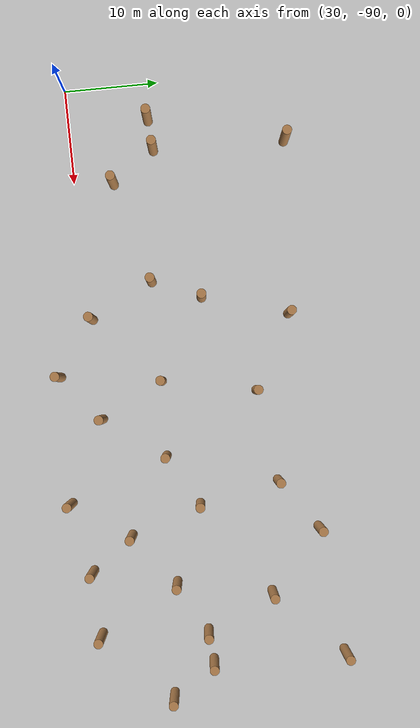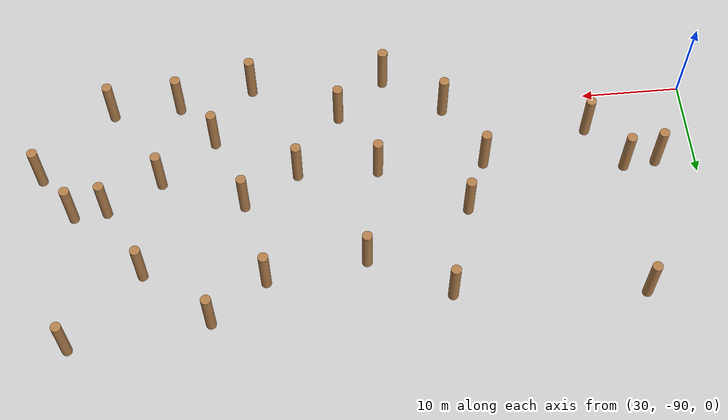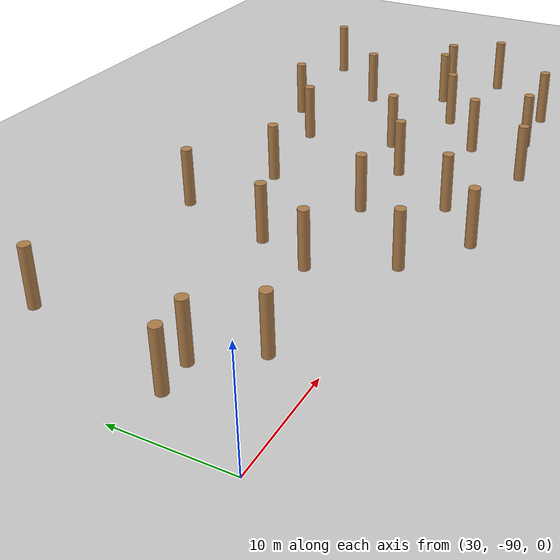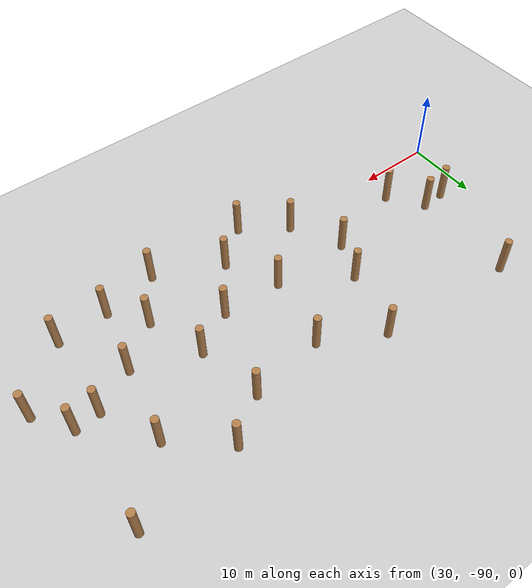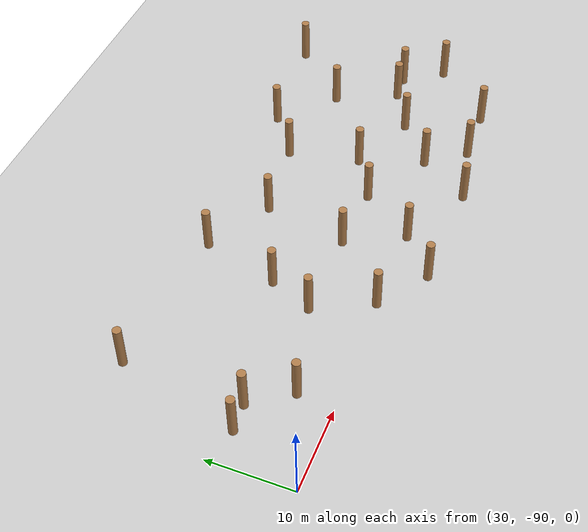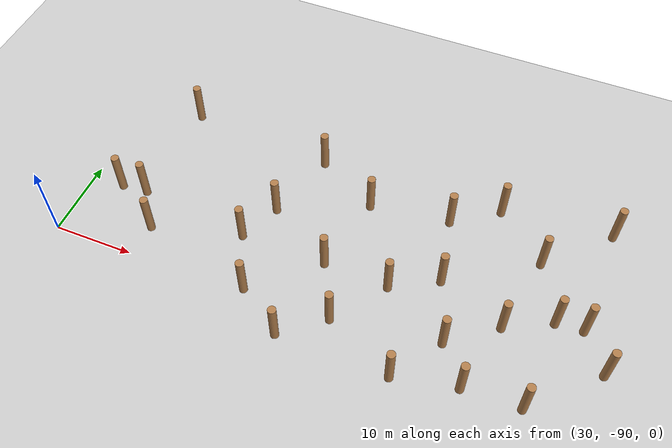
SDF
<sdf version="1.6">
 <world name="default">
  <model name="ground_plane">
   <static>1</static>
   <link name="link">
    <collision name="collision">
     <geometry><plane><normal>0 0 1</normal><size>100 100</size></plane></geometry>
     <surface><friction><ode><mu>100</mu><mu2>50</mu2></ode></friction></surface>
    </collision>
    <visual name="visual">
     <cast_shadows>0</cast_shadows>
     <geometry><plane><normal>0 0 1</normal><size>100 100</size></plane></geometry>
     <material>
      <script><uri>file://media/materials/scripts/gazebo.material</uri><name>Gazebo/Grey</name></script>
     </material>
    </visual>
   </link>
  </model>
  <model name="WoodPillars_5">
   <link name="link">
    <inertial>
     <mass>1</mass>
     <inertia><ixx>0.145833</ixx><ixy>0</ixy><ixz>0</ixz><iyy>0.145833</iyy><iyz>0</iyz><izz>0.125</izz></inertia>
    </inertial>
    <visual name="visual">
     <geometry><cylinder><radius>0.5</radius><length>5.50507</length></cylinder></geometry>
     <material>
      <script><name>Gazebo/Wood</name><uri>file://media/materials/scripts/gazebo.material</uri></script>
     </material>
    </visual>
    <collision name="collision">
     <geometry><cylinder><radius>0.5</radius><length>5.50507</length></cylinder></geometry>
     <surface>
      <friction>
       <ode><mu>1</mu><mu2>1</mu2><fdir1>0 0 0</fdir1><slip1>0</slip1><slip2>0</slip2></ode>
       <torsional>
        <coefficient>1</coefficient>
        <patch_radius>0</patch_radius>
        <surface_radius>0</surface_radius>
        <use_patch_radius>1</use_patch_radius>
        <ode><slip>0</slip></ode>
       </torsional>
      </friction>
      <bounce><restitution_coefficient>0</restitution_coefficient><threshold>1e+06</threshold></bounce>
      <contact>
       <collide_without_contact>0</collide_without_contact>
       <collide_without_contact_bitmask>1</collide_without_contact_bitmask>
       <collide_bitmask>1</collide_bitmask>
       <ode>
        <soft_cfm>0</soft_cfm>
        <soft_erp>0.2</soft_erp>
        <kp>1e+13</kp>
        <kd>1</kd>
        <max_vel>0.01</max_vel>
        <min_depth>0</min_depth>
       </ode>
       <bullet>
        <split_impulse>1</split_impulse>
        <split_impulse_penetration_threshold>-0.01</split_impulse_penetration_threshold>
        <soft_cfm>0</soft_cfm>
        <soft_erp>0.2</soft_erp>
        <kp>1e+13</kp>
        <kd>1</kd>
       </bullet>
      </contact>
     </surface>
    </collision>
   </link>
   <link name="link_clone">
    <inertial>
     <mass>1</mass>
     <inertia><ixx>0.145833</ixx><ixy>0</ixy><ixz>0</ixz><iyy>0.145833</iyy><iyz>0</iyz><izz>0.125</izz></inertia>
    </inertial>
    <pose>17.6954 -2.91348 -2e-06 0 -0 -0.001289</pose>
    <visual name="visual">
     <geometry><cylinder><radius>0.5</radius><length>5.50507</length></cylinder></geometry>
     <material>
      <script><name>Gazebo/Wood</name><uri>file://media/materials/scripts/gazebo.material</uri></script>
      <shader type="pixel"/>
     </material>
    </visual>
    <collision name="collision">
     <geometry><cylinder><radius>0.5</radius><length>5.50507</length></cylinder></geometry>
     <surface>
      <friction>
       <ode><mu>1</mu><mu2>1</mu2><fdir1>0 0 0</fdir1><slip1>0</slip1><slip2>0</slip2></ode>
       <torsional>
        <coefficient>1</coefficient>
        <patch_radius>0</patch_radius>
        <surface_radius>0</surface_radius>
        <use_patch_radius>1</use_patch_radius>
        <ode><slip>0</slip></ode>
       </torsional>
      </friction>
      <bounce><restitution_coefficient>0</restitution_coefficient><threshold>1e+06</threshold></bounce>
      <contact>
       <collide_without_contact>0</collide_without_contact>
       <collide_without_contact_bitmask>1</collide_without_contact_bitmask>
       <collide_bitmask>1</collide_bitmask>
       <ode>
        <soft_cfm>0</soft_cfm>
        <soft_erp>0.2</soft_erp>
        <kp>1e+13</kp>
        <kd>1</kd>
        <max_vel>0.01</max_vel>
        <min_depth>0</min_depth>
       </ode>
       <bullet>
        <split_impulse>1</split_impulse>
        <split_impulse_penetration_threshold>-0.01</split_impulse_penetration_threshold>
        <soft_cfm>0</soft_cfm>
        <soft_erp>0.2</soft_erp>
        <kp>1e+13</kp>
        <kd>1</kd>
       </bullet>
      </contact>
     </surface>
    </collision>
   </link>
   <link name="link_clone_12">
    <inertial>
     <mass>1</mass>
     <inertia><ixx>0.145833</ixx><ixy>0</ixy><ixz>0</ixz><iyy>0.145833</iyy><iyz>0</iyz><izz>0.125</izz></inertia>
    </inertial>
    <pose>36.6063 2.3916 -3e-06 0 -0 -0.001289</pose>
    <visual name="visual">
     <geometry><cylinder><radius>0.5</radius><length>5.50507</length></cylinder></geometry>
     <material>
      <script><name>Gazebo/Wood</name><uri>file://media/materials/scripts/gazebo.material</uri></script>
      <shader type="pixel"/>
     </material>
    </visual>
    <collision name="collision">
     <geometry><cylinder><radius>0.5</radius><length>5.50507</length></cylinder></geometry>
     <surface>
      <friction>
       <ode><mu>1</mu><mu2>1</mu2><fdir1>0 0 0</fdir1><slip1>0</slip1><slip2>0</slip2></ode>
       <torsional>
        <coefficient>1</coefficient>
        <patch_radius>0</patch_radius>
        <surface_radius>0</surface_radius>
        <use_patch_radius>1</use_patch_radius>
        <ode><slip>0</slip></ode>
       </torsional>
      </friction>
      <bounce><restitution_coefficient>0</restitution_coefficient><threshold>1e+06</threshold></bounce>
      <contact>
       <collide_without_contact>0</collide_without_contact>
       <collide_without_contact_bitmask>1</collide_without_contact_bitmask>
       <collide_bitmask>1</collide_bitmask>
       <ode>
        <soft_cfm>0</soft_cfm>
        <soft_erp>0.2</soft_erp>
        <kp>1e+13</kp>
        <kd>1</kd>
        <max_vel>0.01</max_vel>
        <min_depth>0</min_depth>
       </ode>
       <bullet>
        <split_impulse>1</split_impulse>
        <split_impulse_penetration_threshold>-0.01</split_impulse_penetration_threshold>
        <soft_cfm>0</soft_cfm>
        <soft_erp>0.2</soft_erp>
        <kp>1e+13</kp>
        <kd>1</kd>
       </bullet>
      </contact>
     </surface>
    </collision>
   </link>
   <link name="link_clone_13">
    <inertial>
     <mass>1</mass>
     <inertia><ixx>0.145833</ixx><ixy>0</ixy><ixz>0</ixz><iyy>0.145833</iyy><iyz>0</iyz><izz>0.125</izz></inertia>
    </inertial>
    <pose>32.2715 -23.3528 -3e-06 0 -0 -0.001289</pose>
    <visual name="visual">
     <geometry><cylinder><radius>0.5</radius><length>5.50507</length></cylinder></geometry>
     <material>
      <script><name>Gazebo/Wood</name><uri>file://media/materials/scripts/gazebo.material</uri></script>
      <shader type="pixel"/>
     </material>
    </visual>
    <collision name="collision">
     <geometry><cylinder><radius>0.5</radius><length>5.50507</length></cylinder></geometry>
     <surface>
      <friction>
       <ode><mu>1</mu><mu2>1</mu2><fdir1>0 0 0</fdir1><slip1>0</slip1><slip2>0</slip2></ode>
       <torsional>
        <coefficient>1</coefficient>
        <patch_radius>0</patch_radius>
        <surface_radius>0</surface_radius>
        <use_patch_radius>1</use_patch_radius>
        <ode><slip>0</slip></ode>
       </torsional>
      </friction>
      <bounce><restitution_coefficient>0</restitution_coefficient><threshold>1e+06</threshold></bounce>
      <contact>
       <collide_without_contact>0</collide_without_contact>
       <collide_without_contact_bitmask>1</collide_without_contact_bitmask>
       <collide_bitmask>1</collide_bitmask>
       <ode>
        <soft_cfm>0</soft_cfm>
        <soft_erp>0.2</soft_erp>
        <kp>1e+13</kp>
        <kd>1</kd>
        <max_vel>0.01</max_vel>
        <min_depth>0</min_depth>
       </ode>
       <bullet>
        <split_impulse>1</split_impulse>
        <split_impulse_penetration_threshold>-0.01</split_impulse_penetration_threshold>
        <soft_cfm>0</soft_cfm>
        <soft_erp>0.2</soft_erp>
        <kp>1e+13</kp>
        <kd>1</kd>
       </bullet>
      </contact>
     </surface>
    </collision>
   </link>
   <link name="link_clone_14">
    <inertial>
     <mass>1</mass>
     <inertia><ixx>0.145833</ixx><ixy>0</ixy><ixz>0</ixz><iyy>0.145833</iyy><iyz>0</iyz><izz>0.125</izz></inertia>
    </inertial>
    <pose>9.31461 -20.9997 -1e-06 0 -0 -0.001289</pose>
    <visual name="visual">
     <geometry><cylinder><radius>0.5</radius><length>5.50507</length></cylinder></geometry>
     <material>
      <script><name>Gazebo/Wood</name><uri>file://media/materials/scripts/gazebo.material</uri></script>
      <shader type="pixel"/>
     </material>
    </visual>
    <collision name="collision">
     <geometry><cylinder><radius>0.5</radius><length>5.50507</length></cylinder></geometry>
     <surface>
      <friction>
       <ode><mu>1</mu><mu2>1</mu2><fdir1>0 0 0</fdir1><slip1>0</slip1><slip2>0</slip2></ode>
       <torsional>
        <coefficient>1</coefficient>
        <patch_radius>0</patch_radius>
        <surface_radius>0</surface_radius>
        <use_patch_radius>1</use_patch_radius>
        <ode><slip>0</slip></ode>
       </torsional>
      </friction>
      <bounce><restitution_coefficient>0</restitution_coefficient><threshold>1e+06</threshold></bounce>
      <contact>
       <collide_without_contact>0</collide_without_contact>
       <collide_without_contact_bitmask>1</collide_without_contact_bitmask>
       <collide_bitmask>1</collide_bitmask>
       <ode>
        <soft_cfm>0</soft_cfm>
        <soft_erp>0.2</soft_erp>
        <kp>1e+13</kp>
        <kd>1</kd>
        <max_vel>0.01</max_vel>
        <min_depth>0</min_depth>
       </ode>
       <bullet>
        <split_impulse>1</split_impulse>
        <split_impulse_penetration_threshold>-0.01</split_impulse_penetration_threshold>
        <soft_cfm>0</soft_cfm>
        <soft_erp>0.2</soft_erp>
        <kp>1e+13</kp>
        <kd>1</kd>
       </bullet>
      </contact>
     </surface>
    </collision>
   </link>
   <link name="link_clone_15">
    <inertial>
     <mass>1</mass>
     <inertia><ixx>0.145833</ixx><ixy>0</ixy><ixz>0</ixz><iyy>0.145833</iyy><iyz>0</iyz><izz>0.125</izz></inertia>
    </inertial>
    <pose>17.9894 -25.1945 -2e-06 0 -0 -0.001289</pose>
    <visual name="visual">
     <geometry><cylinder><radius>0.5</radius><length>5.50507</length></cylinder></geometry>
     <material>
      <script><name>Gazebo/Wood</name><uri>file://media/materials/scripts/gazebo.material</uri></script>
      <shader type="pixel"/>
     </material>
    </visual>
    <collision name="collision">
     <geometry><cylinder><radius>0.5</radius><length>5.50507</length></cylinder></geometry>
     <surface>
      <friction>
       <ode><mu>1</mu><mu2>1</mu2><fdir1>0 0 0</fdir1><slip1>0</slip1><slip2>0</slip2></ode>
       <torsional>
        <coefficient>1</coefficient>
        <patch_radius>0</patch_radius>
        <surface_radius>0</surface_radius>
        <use_patch_radius>1</use_patch_radius>
        <ode><slip>0</slip></ode>
       </torsional>
      </friction>
      <bounce><restitution_coefficient>0</restitution_coefficient><threshold>1e+06</threshold></bounce>
      <contact>
       <collide_without_contact>0</collide_without_contact>
       <collide_without_contact_bitmask>1</collide_without_contact_bitmask>
       <collide_bitmask>1</collide_bitmask>
       <ode>
        <soft_cfm>0</soft_cfm>
        <soft_erp>0.2</soft_erp>
        <kp>1e+13</kp>
        <kd>1</kd>
        <max_vel>0.01</max_vel>
        <min_depth>0</min_depth>
       </ode>
       <bullet>
        <split_impulse>1</split_impulse>
        <split_impulse_penetration_threshold>-0.01</split_impulse_penetration_threshold>
        <soft_cfm>0</soft_cfm>
        <soft_erp>0.2</soft_erp>
        <kp>1e+13</kp>
        <kd>1</kd>
       </bullet>
      </contact>
     </surface>
    </collision>
   </link>
   <link name="link_clone_16">
    <inertial>
     <mass>1</mass>
     <inertia><ixx>0.145833</ixx><ixy>0</ixy><ixz>0</ixz><iyy>0.145833</iyy><iyz>0</iyz><izz>0.125</izz></inertia>
    </inertial>
    <pose>32.9662 -11.9429 -3e-06 0 -0 -0.001289</pose>
    <visual name="visual">
     <geometry><cylinder><radius>0.5</radius><length>5.50507</length></cylinder></geometry>
     <material>
      <script><name>Gazebo/Wood</name><uri>file://media/materials/scripts/gazebo.material</uri></script>
      <shader type="pixel"/>
     </material>
    </visual>
    <collision name="collision">
     <geometry><cylinder><radius>0.5</radius><length>5.50507</length></cylinder></geometry>
     <surface>
      <friction>
       <ode><mu>1</mu><mu2>1</mu2><fdir1>0 0 0</fdir1><slip1>0</slip1><slip2>0</slip2></ode>
       <torsional>
        <coefficient>1</coefficient>
        <patch_radius>0</patch_radius>
        <surface_radius>0</surface_radius>
        <use_patch_radius>1</use_patch_radius>
        <ode><slip>0</slip></ode>
       </torsional>
      </friction>
      <bounce><restitution_coefficient>0</restitution_coefficient><threshold>1e+06</threshold></bounce>
      <contact>
       <collide_without_contact>0</collide_without_contact>
       <collide_without_contact_bitmask>1</collide_without_contact_bitmask>
       <collide_bitmask>1</collide_bitmask>
       <ode>
        <soft_cfm>0</soft_cfm>
        <soft_erp>0.2</soft_erp>
        <kp>1e+13</kp>
        <kd>1</kd>
        <max_vel>0.01</max_vel>
        <min_depth>0</min_depth>
       </ode>
       <bullet>
        <split_impulse>1</split_impulse>
        <split_impulse_penetration_threshold>-0.01</split_impulse_penetration_threshold>
        <soft_cfm>0</soft_cfm>
        <soft_erp>0.2</soft_erp>
        <kp>1e+13</kp>
        <kd>1</kd>
       </bullet>
      </contact>
     </surface>
    </collision>
   </link>
   <link name="link_clone_17">
    <inertial>
     <mass>1</mass>
     <inertia><ixx>0.145833</ixx><ixy>0</ixy><ixz>0</ixz><iyy>0.145833</iyy><iyz>0</iyz><izz>0.125</izz></inertia>
    </inertial>
    <pose>19.3784 -11.4604 -2e-06 0 -0 -0.001289</pose>
    <visual name="visual">
     <geometry><cylinder><radius>0.5</radius><length>5.50507</length></cylinder></geometry>
     <material>
      <script><name>Gazebo/Wood</name><uri>file://media/materials/scripts/gazebo.material</uri></script>
      <shader type="pixel"/>
     </material>
    </visual>
    <collision name="collision">
     <geometry><cylinder><radius>0.5</radius><length>5.50507</length></cylinder></geometry>
     <surface>
      <friction>
       <ode><mu>1</mu><mu2>1</mu2><fdir1>0 0 0</fdir1><slip1>0</slip1><slip2>0</slip2></ode>
       <torsional>
        <coefficient>1</coefficient>
        <patch_radius>0</patch_radius>
        <surface_radius>0</surface_radius>
        <use_patch_radius>1</use_patch_radius>
        <ode><slip>0</slip></ode>
       </torsional>
      </friction>
      <bounce><restitution_coefficient>0</restitution_coefficient><threshold>1e+06</threshold></bounce>
      <contact>
       <collide_without_contact>0</collide_without_contact>
       <collide_without_contact_bitmask>1</collide_without_contact_bitmask>
       <collide_bitmask>1</collide_bitmask>
       <ode>
        <soft_cfm>0</soft_cfm>
        <soft_erp>0.2</soft_erp>
        <kp>1e+13</kp>
        <kd>1</kd>
        <max_vel>0.01</max_vel>
        <min_depth>0</min_depth>
       </ode>
       <bullet>
        <split_impulse>1</split_impulse>
        <split_impulse_penetration_threshold>-0.01</split_impulse_penetration_threshold>
        <soft_cfm>0</soft_cfm>
        <soft_erp>0.2</soft_erp>
        <kp>1e+13</kp>
        <kd>1</kd>
       </bullet>
      </contact>
     </surface>
    </collision>
   </link>
   <link name="link_clone_20">
    <inertial>
     <mass>1</mass>
     <inertia><ixx>0.145833</ixx><ixy>0</ixy><ixz>0</ixz><iyy>0.145833</iyy><iyz>0</iyz><izz>0.125</izz></inertia>
    </inertial>
    <pose>-2.64423 -9.12396 -0 0 -0 -0.001289</pose>
    <visual name="visual">
     <geometry><cylinder><radius>0.5</radius><length>5.50507</length></cylinder></geometry>
     <material>
      <script><name>Gazebo/Wood</name><uri>file://media/materials/scripts/gazebo.material</uri></script>
      <shader type="pixel"/>
     </material>
    </visual>
    <collision name="collision">
     <geometry><cylinder><radius>0.5</radius><length>5.50507</length></cylinder></geometry>
     <surface>
      <friction>
       <ode><mu>1</mu><mu2>1</mu2><fdir1>0 0 0</fdir1><slip1>0</slip1><slip2>0</slip2></ode>
       <torsional>
        <coefficient>1</coefficient>
        <patch_radius>0</patch_radius>
        <surface_radius>0</surface_radius>
        <use_patch_radius>1</use_patch_radius>
        <ode><slip>0</slip></ode>
       </torsional>
      </friction>
      <bounce><restitution_coefficient>0</restitution_coefficient><threshold>1e+06</threshold></bounce>
      <contact>
       <collide_without_contact>0</collide_without_contact>
       <collide_without_contact_bitmask>1</collide_without_contact_bitmask>
       <collide_bitmask>1</collide_bitmask>
       <ode>
        <soft_cfm>0</soft_cfm>
        <soft_erp>0.2</soft_erp>
        <kp>1e+13</kp>
        <kd>1</kd>
        <max_vel>0.01</max_vel>
        <min_depth>0</min_depth>
       </ode>
       <bullet>
        <split_impulse>1</split_impulse>
        <split_impulse_penetration_threshold>-0.01</split_impulse_penetration_threshold>
        <soft_cfm>0</soft_cfm>
        <soft_erp>0.2</soft_erp>
        <kp>1e+13</kp>
        <kd>1</kd>
       </bullet>
      </contact>
     </surface>
    </collision>
   </link>
   <link name="link_clone_23">
    <inertial>
     <mass>1</mass>
     <inertia><ixx>0.145833</ixx><ixy>0</ixy><ixz>0</ixz><iyy>0.145833</iyy><iyz>0</iyz><izz>0.125</izz></inertia>
    </inertial>
    <pose>29.5176 -4.71623 -3e-06 0 -0 -0.001289</pose>
    <visual name="visual">
     <geometry><cylinder><radius>0.5</radius><length>5.50507</length></cylinder></geometry>
     <material>
      <script><name>Gazebo/Wood</name><uri>file://media/materials/scripts/gazebo.material</uri></script>
      <shader type="pixel"/>
     </material>
    </visual>
    <collision name="collision">
     <geometry><cylinder><radius>0.5</radius><length>5.50507</length></cylinder></geometry>
     <surface>
      <friction>
       <ode><mu>1</mu><mu2>1</mu2><fdir1>0 0 0</fdir1><slip1>0</slip1><slip2>0</slip2></ode>
       <torsional>
        <coefficient>1</coefficient>
        <patch_radius>0</patch_radius>
        <surface_radius>0</surface_radius>
        <use_patch_radius>1</use_patch_radius>
        <ode><slip>0</slip></ode>
       </torsional>
      </friction>
      <bounce><restitution_coefficient>0</restitution_coefficient><threshold>1e+06</threshold></bounce>
      <contact>
       <collide_without_contact>0</collide_without_contact>
       <collide_without_contact_bitmask>1</collide_without_contact_bitmask>
       <collide_bitmask>1</collide_bitmask>
       <ode>
        <soft_cfm>0</soft_cfm>
        <soft_erp>0.2</soft_erp>
        <kp>1e+13</kp>
        <kd>1</kd>
        <max_vel>0.01</max_vel>
        <min_depth>0</min_depth>
       </ode>
       <bullet>
        <split_impulse>1</split_impulse>
        <split_impulse_penetration_threshold>-0.01</split_impulse_penetration_threshold>
        <soft_cfm>0</soft_cfm>
        <soft_erp>0.2</soft_erp>
        <kp>1e+13</kp>
        <kd>1</kd>
       </bullet>
      </contact>
     </surface>
    </collision>
   </link>
   <link name="link_clone_24">
    <inertial>
     <mass>1</mass>
     <inertia><ixx>0.145833</ixx><ixy>0</ixy><ixz>0</ixz><iyy>0.145833</iyy><iyz>0</iyz><izz>0.125</izz></inertia>
    </inertial>
    <pose>7.84688 -4.26113 -1e-06 0 -0 -0.001289</pose>
    <visual name="visual">
     <geometry><cylinder><radius>0.5</radius><length>5.50507</length></cylinder></geometry>
     <material>
      <script><name>Gazebo/Wood</name><uri>file://media/materials/scripts/gazebo.material</uri></script>
      <shader type="pixel"/>
     </material>
    </visual>
    <collision name="collision">
     <geometry><cylinder><radius>0.5</radius><length>5.50507</length></cylinder></geometry>
     <surface>
      <friction>
       <ode><mu>1</mu><mu2>1</mu2><fdir1>0 0 0</fdir1><slip1>0</slip1><slip2>0</slip2></ode>
       <torsional>
        <coefficient>1</coefficient>
        <patch_radius>0</patch_radius>
        <surface_radius>0</surface_radius>
        <use_patch_radius>1</use_patch_radius>
        <ode><slip>0</slip></ode>
       </torsional>
      </friction>
      <bounce><restitution_coefficient>0</restitution_coefficient><threshold>1e+06</threshold></bounce>
      <contact>
       <collide_without_contact>0</collide_without_contact>
       <collide_without_contact_bitmask>1</collide_without_contact_bitmask>
       <collide_bitmask>1</collide_bitmask>
       <ode>
        <soft_cfm>0</soft_cfm>
        <soft_erp>0.2</soft_erp>
        <kp>1e+13</kp>
        <kd>1</kd>
        <max_vel>0.01</max_vel>
        <min_depth>0</min_depth>
       </ode>
       <bullet>
        <split_impulse>1</split_impulse>
        <split_impulse_penetration_threshold>-0.01</split_impulse_penetration_threshold>
        <soft_cfm>0</soft_cfm>
        <soft_erp>0.2</soft_erp>
        <kp>1e+13</kp>
        <kd>1</kd>
       </bullet>
      </contact>
     </surface>
    </collision>
   </link>
   <link name="link_clone_26">
    <inertial>
     <mass>1</mass>
     <inertia><ixx>0.145833</ixx><ixy>0</ixy><ixz>0</ixz><iyy>0.145833</iyy><iyz>0</iyz><izz>0.125</izz></inertia>
    </inertial>
    <pose>13.9187 -14.5508 -1e-06 0 -0 -0.001289</pose>
    <visual name="visual">
     <geometry><cylinder><radius>0.5</radius><length>5.50507</length></cylinder></geometry>
     <material>
      <script><name>Gazebo/Wood</name><uri>file://media/materials/scripts/gazebo.material</uri></script>
      <shader type="pixel"/>
     </material>
    </visual>
    <collision name="collision">
     <geometry><cylinder><radius>0.5</radius><length>5.50507</length></cylinder></geometry>
     <surface>
      <friction>
       <ode><mu>1</mu><mu2>1</mu2><fdir1>0 0 0</fdir1><slip1>0</slip1><slip2>0</slip2></ode>
       <torsional>
        <coefficient>1</coefficient>
        <patch_radius>0</patch_radius>
        <surface_radius>0</surface_radius>
        <use_patch_radius>1</use_patch_radius>
        <ode><slip>0</slip></ode>
       </torsional>
      </friction>
      <bounce><restitution_coefficient>0</restitution_coefficient><threshold>1e+06</threshold></bounce>
      <contact>
       <collide_without_contact>0</collide_without_contact>
       <collide_without_contact_bitmask>1</collide_without_contact_bitmask>
       <collide_bitmask>1</collide_bitmask>
       <ode>
        <soft_cfm>0</soft_cfm>
        <soft_erp>0.2</soft_erp>
        <kp>1e+13</kp>
        <kd>1</kd>
        <max_vel>0.01</max_vel>
        <min_depth>0</min_depth>
       </ode>
       <bullet>
        <split_impulse>1</split_impulse>
        <split_impulse_penetration_threshold>-0.01</split_impulse_penetration_threshold>
        <soft_cfm>0</soft_cfm>
        <soft_erp>0.2</soft_erp>
        <kp>1e+13</kp>
        <kd>1</kd>
       </bullet>
      </contact>
     </surface>
    </collision>
   </link>
   <link name="link_clone_27">
    <inertial>
     <mass>1</mass>
     <inertia><ixx>0.145833</ixx><ixy>0</ixy><ixz>0</ixz><iyy>0.145833</iyy><iyz>0</iyz><izz>0.125</izz></inertia>
    </inertial>
    <pose>4.38632 -25.0605 -1e-06 0 -0 -0.001289</pose>
    <visual name="visual">
     <geometry><cylinder><radius>0.5</radius><length>5.50507</length></cylinder></geometry>
     <material>
      <script><name>Gazebo/Wood</name><uri>file://media/materials/scripts/gazebo.material</uri></script>
      <shader type="pixel"/>
     </material>
    </visual>
    <collision name="collision">
     <geometry><cylinder><radius>0.5</radius><length>5.50507</length></cylinder></geometry>
     <surface>
      <friction>
       <ode><mu>1</mu><mu2>1</mu2><fdir1>0 0 0</fdir1><slip1>0</slip1><slip2>0</slip2></ode>
       <torsional>
        <coefficient>1</coefficient>
        <patch_radius>0</patch_radius>
        <surface_radius>0</surface_radius>
        <use_patch_radius>1</use_patch_radius>
        <ode><slip>0</slip></ode>
       </torsional>
      </friction>
      <bounce><restitution_coefficient>0</restitution_coefficient><threshold>1e+06</threshold></bounce>
      <contact>
       <collide_without_contact>0</collide_without_contact>
       <collide_without_contact_bitmask>1</collide_without_contact_bitmask>
       <collide_bitmask>1</collide_bitmask>
       <ode>
        <soft_cfm>0</soft_cfm>
        <soft_erp>0.2</soft_erp>
        <kp>1e+13</kp>
        <kd>1</kd>
        <max_vel>0.01</max_vel>
        <min_depth>0</min_depth>
       </ode>
       <bullet>
        <split_impulse>1</split_impulse>
        <split_impulse_penetration_threshold>-0.01</split_impulse_penetration_threshold>
        <soft_cfm>0</soft_cfm>
        <soft_erp>0.2</soft_erp>
        <kp>1e+13</kp>
        <kd>1</kd>
       </bullet>
      </contact>
     </surface>
    </collision>
   </link>
   <link name="link_clone_28">
    <inertial>
     <mass>1</mass>
     <inertia><ixx>0.145833</ixx><ixy>0</ixy><ixz>0</ixz><iyy>0.145833</iyy><iyz>0</iyz><izz>0.125</izz></inertia>
    </inertial>
    <pose>27.5353 -14.766 -3e-06 0 -0 -0.001289</pose>
    <visual name="visual">
     <geometry><cylinder><radius>0.5</radius><length>5.50507</length></cylinder></geometry>
     <material>
      <script><name>Gazebo/Wood</name><uri>file://media/materials/scripts/gazebo.material</uri></script>
      <shader type="pixel"/>
     </material>
    </visual>
    <collision name="collision">
     <geometry><cylinder><radius>0.5</radius><length>5.50507</length></cylinder></geometry>
     <surface>
      <friction>
       <ode><mu>1</mu><mu2>1</mu2><fdir1>0 0 0</fdir1><slip1>0</slip1><slip2>0</slip2></ode>
       <torsional>
        <coefficient>1</coefficient>
        <patch_radius>0</patch_radius>
        <surface_radius>0</surface_radius>
        <use_patch_radius>1</use_patch_radius>
        <ode><slip>0</slip></ode>
       </torsional>
      </friction>
      <bounce><restitution_coefficient>0</restitution_coefficient><threshold>1e+06</threshold></bounce>
      <contact>
       <collide_without_contact>0</collide_without_contact>
       <collide_without_contact_bitmask>1</collide_without_contact_bitmask>
       <collide_bitmask>1</collide_bitmask>
       <ode>
        <soft_cfm>0</soft_cfm>
        <soft_erp>0.2</soft_erp>
        <kp>1e+13</kp>
        <kd>1</kd>
        <max_vel>0.01</max_vel>
        <min_depth>0</min_depth>
       </ode>
       <bullet>
        <split_impulse>1</split_impulse>
        <split_impulse_penetration_threshold>-0.01</split_impulse_penetration_threshold>
        <soft_cfm>0</soft_cfm>
        <soft_erp>0.2</soft_erp>
        <kp>1e+13</kp>
        <kd>1</kd>
       </bullet>
      </contact>
     </surface>
    </collision>
   </link>
   <link name="link_clone_29">
    <inertial>
     <mass>1</mass>
     <inertia><ixx>0.145833</ixx><ixy>0</ixy><ixz>0</ixz><iyy>0.145833</iyy><iyz>0</iyz><izz>0.125</izz></inertia>
    </inertial>
    <pose>39.4401 -16.2696 -4e-06 0 -0 -0.001289</pose>
    <visual name="visual">
     <geometry><cylinder><radius>0.5</radius><length>5.50507</length></cylinder></geometry>
     <material>
      <script><name>Gazebo/Wood</name><uri>file://media/materials/scripts/gazebo.material</uri></script>
      <shader type="pixel"/>
     </material>
    </visual>
    <collision name="collision">
     <geometry><cylinder><radius>0.5</radius><length>5.50507</length></cylinder></geometry>
     <surface>
      <friction>
       <ode><mu>1</mu><mu2>1</mu2><fdir1>0 0 0</fdir1><slip1>0</slip1><slip2>0</slip2></ode>
       <torsional>
        <coefficient>1</coefficient>
        <patch_radius>0</patch_radius>
        <surface_radius>0</surface_radius>
        <use_patch_radius>1</use_patch_radius>
        <ode><slip>0</slip></ode>
       </torsional>
      </friction>
      <bounce><restitution_coefficient>0</restitution_coefficient><threshold>1e+06</threshold></bounce>
      <contact>
       <collide_without_contact>0</collide_without_contact>
       <collide_without_contact_bitmask>1</collide_without_contact_bitmask>
       <collide_bitmask>1</collide_bitmask>
       <ode>
        <soft_cfm>0</soft_cfm>
        <soft_erp>0.2</soft_erp>
        <kp>1e+13</kp>
        <kd>1</kd>
        <max_vel>0.01</max_vel>
        <min_depth>0</min_depth>
       </ode>
       <bullet>
        <split_impulse>1</split_impulse>
        <split_impulse_penetration_threshold>-0.01</split_impulse_penetration_threshold>
        <soft_cfm>0</soft_cfm>
        <soft_erp>0.2</soft_erp>
        <kp>1e+13</kp>
        <kd>1</kd>
       </bullet>
      </contact>
     </surface>
    </collision>
   </link>
   <link name="link_clone_32">
    <inertial>
     <mass>1</mass>
     <inertia><ixx>0.145833</ixx><ixy>0</ixy><ixz>0</ixz><iyy>0.145833</iyy><iyz>0</iyz><izz>0.125</izz></inertia>
    </inertial>
    <pose>-4.82669 -14.2698 -0 0 -0 -0.001289</pose>
    <visual name="visual">
     <geometry><cylinder><radius>0.5</radius><length>5.50507</length></cylinder></geometry>
     <material>
      <script><name>Gazebo/Wood</name><uri>file://media/materials/scripts/gazebo.material</uri></script>
      <shader type="pixel"/>
     </material>
    </visual>
    <collision name="collision">
     <geometry><cylinder><radius>0.5</radius><length>5.50507</length></cylinder></geometry>
     <surface>
      <friction>
       <ode><mu>1</mu><mu2>1</mu2><fdir1>0 0 0</fdir1><slip1>0</slip1><slip2>0</slip2></ode>
       <torsional>
        <coefficient>1</coefficient>
        <patch_radius>0</patch_radius>
        <surface_radius>0</surface_radius>
        <use_patch_radius>1</use_patch_radius>
        <ode><slip>0</slip></ode>
       </torsional>
      </friction>
      <bounce><restitution_coefficient>0</restitution_coefficient><threshold>1e+06</threshold></bounce>
      <contact>
       <collide_without_contact>0</collide_without_contact>
       <collide_without_contact_bitmask>1</collide_without_contact_bitmask>
       <collide_bitmask>1</collide_bitmask>
       <ode>
        <soft_cfm>0</soft_cfm>
        <soft_erp>0.2</soft_erp>
        <kp>1e+13</kp>
        <kd>1</kd>
        <max_vel>0.01</max_vel>
        <min_depth>0</min_depth>
       </ode>
       <bullet>
        <split_impulse>1</split_impulse>
        <split_impulse_penetration_threshold>-0.01</split_impulse_penetration_threshold>
        <soft_cfm>0</soft_cfm>
        <soft_erp>0.2</soft_erp>
        <kp>1e+13</kp>
        <kd>1</kd>
       </bullet>
      </contact>
     </surface>
    </collision>
   </link>
   <link name="link_clone_34">
    <inertial>
     <mass>1</mass>
     <inertia><ixx>0.145833</ixx><ixy>0</ixy><ixz>0</ixz><iyy>0.145833</iyy><iyz>0</iyz><izz>0.125</izz></inertia>
    </inertial>
    <pose>25.4673 -23.5908 -3e-06 0 -0 -0.001289</pose>
    <visual name="visual">
     <geometry><cylinder><radius>0.5</radius><length>5.50507</length></cylinder></geometry>
     <material>
      <script><name>Gazebo/Wood</name><uri>file://media/materials/scripts/gazebo.material</uri></script>
      <shader type="pixel"/>
     </material>
    </visual>
    <collision name="collision">
     <geometry><cylinder><radius>0.5</radius><length>5.50507</length></cylinder></geometry>
     <surface>
      <friction>
       <ode><mu>1</mu><mu2>1</mu2><fdir1>0 0 0</fdir1><slip1>0</slip1><slip2>0</slip2></ode>
       <torsional>
        <coefficient>1</coefficient>
        <patch_radius>0</patch_radius>
        <surface_radius>0</surface_radius>
        <use_patch_radius>1</use_patch_radius>
        <ode><slip>0</slip></ode>
       </torsional>
      </friction>
      <bounce><restitution_coefficient>0</restitution_coefficient><threshold>1e+06</threshold></bounce>
      <contact>
       <collide_without_contact>0</collide_without_contact>
       <collide_without_contact_bitmask>1</collide_without_contact_bitmask>
       <collide_bitmask>1</collide_bitmask>
       <ode>
        <soft_cfm>0</soft_cfm>
        <soft_erp>0.2</soft_erp>
        <kp>1e+13</kp>
        <kd>1</kd>
        <max_vel>0.01</max_vel>
        <min_depth>0</min_depth>
       </ode>
       <bullet>
        <split_impulse>1</split_impulse>
        <split_impulse_penetration_threshold>-0.01</split_impulse_penetration_threshold>
        <soft_cfm>0</soft_cfm>
        <soft_erp>0.2</soft_erp>
        <kp>1e+13</kp>
        <kd>1</kd>
       </bullet>
      </contact>
     </surface>
    </collision>
   </link>
   <link name="link_clone_4">
    <inertial>
     <mass>1</mass>
     <inertia><ixx>0.145833</ixx><ixy>0</ixy><ixz>0</ixz><iyy>0.145833</iyy><iyz>0</iyz><izz>0.125</izz></inertia>
    </inertial>
    <pose>23.1128 0.93751 -2e-06 0 -0 -0.001289</pose>
    <visual name="visual">
     <geometry><cylinder><radius>0.5</radius><length>5.50507</length></cylinder></geometry>
     <material>
      <script><name>Gazebo/Wood</name><uri>file://media/materials/scripts/gazebo.material</uri></script>
      <shader type="pixel"/>
     </material>
    </visual>
    <collision name="collision">
     <geometry><cylinder><radius>0.5</radius><length>5.50507</length></cylinder></geometry>
     <surface>
      <friction>
       <ode><mu>1</mu><mu2>1</mu2><fdir1>0 0 0</fdir1><slip1>0</slip1><slip2>0</slip2></ode>
       <torsional>
        <coefficient>1</coefficient>
        <patch_radius>0</patch_radius>
        <surface_radius>0</surface_radius>
        <use_patch_radius>1</use_patch_radius>
        <ode><slip>0</slip></ode>
       </torsional>
      </friction>
      <bounce><restitution_coefficient>0</restitution_coefficient><threshold>1e+06</threshold></bounce>
      <contact>
       <collide_without_contact>0</collide_without_contact>
       <collide_without_contact_bitmask>1</collide_without_contact_bitmask>
       <collide_bitmask>1</collide_bitmask>
       <ode>
        <soft_cfm>0</soft_cfm>
        <soft_erp>0.2</soft_erp>
        <kp>1e+13</kp>
        <kd>1</kd>
        <max_vel>0.01</max_vel>
        <min_depth>0</min_depth>
       </ode>
       <bullet>
        <split_impulse>1</split_impulse>
        <split_impulse_penetration_threshold>-0.01</split_impulse_penetration_threshold>
        <soft_cfm>0</soft_cfm>
        <soft_erp>0.2</soft_erp>
        <kp>1e+13</kp>
        <kd>1</kd>
       </bullet>
      </contact>
     </surface>
    </collision>
   </link>
   <link name="link_clone_6">
    <inertial>
     <mass>1</mass>
     <inertia><ixx>0.145833</ixx><ixy>0</ixy><ixz>0</ixz><iyy>0.145833</iyy><iyz>0</iyz><izz>0.125</izz></inertia>
    </inertial>
    <pose>36.2258 -11.6926 -3e-06 0 -0 -0.001289</pose>
    <visual name="visual">
     <geometry><cylinder><radius>0.5</radius><length>5.50507</length></cylinder></geometry>
     <material>
      <script><name>Gazebo/Wood</name><uri>file://media/materials/scripts/gazebo.material</uri></script>
      <shader type="pixel"/>
     </material>
    </visual>
    <collision name="collision">
     <geometry><cylinder><radius>0.5</radius><length>5.50507</length></cylinder></geometry>
     <surface>
      <friction>
       <ode><mu>1</mu><mu2>1</mu2><fdir1>0 0 0</fdir1><slip1>0</slip1><slip2>0</slip2></ode>
       <torsional>
        <coefficient>1</coefficient>
        <patch_radius>0</patch_radius>
        <surface_radius>0</surface_radius>
        <use_patch_radius>1</use_patch_radius>
        <ode><slip>0</slip></ode>
       </torsional>
      </friction>
      <bounce><restitution_coefficient>0</restitution_coefficient><threshold>1e+06</threshold></bounce>
      <contact>
       <collide_without_contact>0</collide_without_contact>
       <collide_without_contact_bitmask>1</collide_without_contact_bitmask>
       <collide_bitmask>1</collide_bitmask>
       <ode>
        <soft_cfm>0</soft_cfm>
        <soft_erp>0.2</soft_erp>
        <kp>1e+13</kp>
        <kd>1</kd>
        <max_vel>0.01</max_vel>
        <min_depth>0</min_depth>
       </ode>
       <bullet>
        <split_impulse>1</split_impulse>
        <split_impulse_penetration_threshold>-0.01</split_impulse_penetration_threshold>
        <soft_cfm>0</soft_cfm>
        <soft_erp>0.2</soft_erp>
        <kp>1e+13</kp>
        <kd>1</kd>
       </bullet>
      </contact>
     </surface>
    </collision>
   </link>
   <link name="link_clone_7">
    <inertial>
     <mass>1</mass>
     <inertia><ixx>0.145833</ixx><ixy>0</ixy><ixz>0</ixz><iyy>0.145833</iyy><iyz>0</iyz><izz>0.125</izz></inertia>
    </inertial>
    <pose>22.0331 -19.0814 -2e-06 0 -0 -0.001289</pose>
    <visual name="visual">
     <geometry><cylinder><radius>0.5</radius><length>5.50507</length></cylinder></geometry>
     <material>
      <script><name>Gazebo/Wood</name><uri>file://media/materials/scripts/gazebo.material</uri></script>
      <shader type="pixel"/>
     </material>
    </visual>
    <collision name="collision">
     <geometry><cylinder><radius>0.5</radius><length>5.50507</length></cylinder></geometry>
     <surface>
      <friction>
       <ode><mu>1</mu><mu2>1</mu2><fdir1>0 0 0</fdir1><slip1>0</slip1><slip2>0</slip2></ode>
       <torsional>
        <coefficient>1</coefficient>
        <patch_radius>0</patch_radius>
        <surface_radius>0</surface_radius>
        <use_patch_radius>1</use_patch_radius>
        <ode><slip>0</slip></ode>
       </torsional>
      </friction>
      <bounce><restitution_coefficient>0</restitution_coefficient><threshold>1e+06</threshold></bounce>
      <contact>
       <collide_without_contact>0</collide_without_contact>
       <collide_without_contact_bitmask>1</collide_without_contact_bitmask>
       <collide_bitmask>1</collide_bitmask>
       <ode>
        <soft_cfm>0</soft_cfm>
        <soft_erp>0.2</soft_erp>
        <kp>1e+13</kp>
        <kd>1</kd>
        <max_vel>0.01</max_vel>
        <min_depth>0</min_depth>
       </ode>
       <bullet>
        <split_impulse>1</split_impulse>
        <split_impulse_penetration_threshold>-0.01</split_impulse_penetration_threshold>
        <soft_cfm>0</soft_cfm>
        <soft_erp>0.2</soft_erp>
        <kp>1e+13</kp>
        <kd>1</kd>
       </bullet>
      </contact>
     </surface>
    </collision>
   </link>
   <link name="link_clone_8">
    <inertial>
     <mass>1</mass>
     <inertia><ixx>0.145833</ixx><ixy>0</ixy><ixz>0</ixz><iyy>0.145833</iyy><iyz>0</iyz><izz>0.125</izz></inertia>
    </inertial>
    <pose>5.87636 -14.2578 -1e-06 0 -0 -0.001289</pose>
    <visual name="visual">
     <geometry><cylinder><radius>0.5</radius><length>5.50507</length></cylinder></geometry>
     <material>
      <script><name>Gazebo/Wood</name><uri>file://media/materials/scripts/gazebo.material</uri></script>
      <shader type="pixel"/>
     </material>
    </visual>
    <collision name="collision">
     <geometry><cylinder><radius>0.5</radius><length>5.50507</length></cylinder></geometry>
     <surface>
      <friction>
       <ode><mu>1</mu><mu2>1</mu2><fdir1>0 0 0</fdir1><slip1>0</slip1><slip2>0</slip2></ode>
       <torsional>
        <coefficient>1</coefficient>
        <patch_radius>0</patch_radius>
        <surface_radius>0</surface_radius>
        <use_patch_radius>1</use_patch_radius>
        <ode><slip>0</slip></ode>
       </torsional>
      </friction>
      <bounce><restitution_coefficient>0</restitution_coefficient><threshold>1e+06</threshold></bounce>
      <contact>
       <collide_without_contact>0</collide_without_contact>
       <collide_without_contact_bitmask>1</collide_without_contact_bitmask>
       <collide_bitmask>1</collide_bitmask>
       <ode>
        <soft_cfm>0</soft_cfm>
        <soft_erp>0.2</soft_erp>
        <kp>1e+13</kp>
        <kd>1</kd>
        <max_vel>0.01</max_vel>
        <min_depth>0</min_depth>
       </ode>
       <bullet>
        <split_impulse>1</split_impulse>
        <split_impulse_penetration_threshold>-0.01</split_impulse_penetration_threshold>
        <soft_cfm>0</soft_cfm>
        <soft_erp>0.2</soft_erp>
        <kp>1e+13</kp>
        <kd>1</kd>
       </bullet>
      </contact>
     </surface>
    </collision>
   </link>
   <link name="link_clone_9">
    <inertial>
     <mass>1</mass>
     <inertia><ixx>0.145833</ixx><ixy>0</ixy><ixz>0</ixz><iyy>0.145833</iyy><iyz>0</iyz><izz>0.125</izz></inertia>
    </inertial>
    <pose>-1.43964 -21.0028 0 0 -0 -0.001289</pose>
    <visual name="visual">
     <geometry><cylinder><radius>0.5</radius><length>5.50507</length></cylinder></geometry>
     <material>
      <script><name>Gazebo/Wood</name><uri>file://media/materials/scripts/gazebo.material</uri></script>
      <shader type="pixel"/>
     </material>
    </visual>
    <collision name="collision">
     <geometry><cylinder><radius>0.5</radius><length>5.50507</length></cylinder></geometry>
     <surface>
      <friction>
       <ode><mu>1</mu><mu2>1</mu2><fdir1>0 0 0</fdir1><slip1>0</slip1><slip2>0</slip2></ode>
       <torsional>
        <coefficient>1</coefficient>
        <patch_radius>0</patch_radius>
        <surface_radius>0</surface_radius>
        <use_patch_radius>1</use_patch_radius>
        <ode><slip>0</slip></ode>
       </torsional>
      </friction>
      <bounce><restitution_coefficient>0</restitution_coefficient><threshold>1e+06</threshold></bounce>
      <contact>
       <collide_without_contact>0</collide_without_contact>
       <collide_without_contact_bitmask>1</collide_without_contact_bitmask>
       <collide_bitmask>1</collide_bitmask>
       <ode>
        <soft_cfm>0</soft_cfm>
        <soft_erp>0.2</soft_erp>
        <kp>1e+13</kp>
        <kd>1</kd>
        <max_vel>0.01</max_vel>
        <min_depth>0</min_depth>
       </ode>
       <bullet>
        <split_impulse>1</split_impulse>
        <split_impulse_penetration_threshold>-0.01</split_impulse_penetration_threshold>
        <soft_cfm>0</soft_cfm>
        <soft_erp>0.2</soft_erp>
        <kp>1e+13</kp>
        <kd>1</kd>
       </bullet>
      </contact>
     </surface>
    </collision>
   </link>
   <static>0</static>
   <pose>56.2518 -68.4111 2.75253 0 -0 0.001733</pose>
  </model>
  <model name="WoodPillars_8">
   <link name="link_clone_12">
    <inertial>
     <mass>1</mass>
     <inertia><ixx>0.145833</ixx><ixy>0</ixy><ixz>0</ixz><iyy>0.145833</iyy><iyz>0</iyz><izz>0.125</izz></inertia>
    </inertial>
    <pose>36.6063 2.3916 -3e-06 0 -0 -0.001289</pose>
    <visual name="visual">
     <geometry><cylinder><radius>0.5</radius><length>5.50507</length></cylinder></geometry>
     <material>
      <script><name>Gazebo/Wood</name><uri>file://media/materials/scripts/gazebo.material</uri></script>
      <shader type="pixel"/>
     </material>
    </visual>
    <collision name="collision">
     <geometry><cylinder><radius>0.5</radius><length>5.50507</length></cylinder></geometry>
     <surface>
      <friction>
       <ode><mu>1</mu><mu2>1</mu2><fdir1>0 0 0</fdir1><slip1>0</slip1><slip2>0</slip2></ode>
       <torsional>
        <coefficient>1</coefficient>
        <patch_radius>0</patch_radius>
        <surface_radius>0</surface_radius>
        <use_patch_radius>1</use_patch_radius>
        <ode><slip>0</slip></ode>
       </torsional>
      </friction>
      <bounce><restitution_coefficient>0</restitution_coefficient><threshold>1e+06</threshold></bounce>
      <contact>
       <collide_without_contact>0</collide_without_contact>
       <collide_without_contact_bitmask>1</collide_without_contact_bitmask>
       <collide_bitmask>1</collide_bitmask>
       <ode>
        <soft_cfm>0</soft_cfm>
        <soft_erp>0.2</soft_erp>
        <kp>1e+13</kp>
        <kd>1</kd>
        <max_vel>0.01</max_vel>
        <min_depth>0</min_depth>
       </ode>
       <bullet>
        <split_impulse>1</split_impulse>
        <split_impulse_penetration_threshold>-0.01</split_impulse_penetration_threshold>
        <soft_cfm>0</soft_cfm>
        <soft_erp>0.2</soft_erp>
        <kp>1e+13</kp>
        <kd>1</kd>
       </bullet>
      </contact>
     </surface>
    </collision>
   </link>
   <link name="link_clone_16">
    <inertial>
     <mass>1</mass>
     <inertia><ixx>0.145833</ixx><ixy>0</ixy><ixz>0</ixz><iyy>0.145833</iyy><iyz>0</iyz><izz>0.125</izz></inertia>
    </inertial>
    <pose>32.9662 -11.9429 -3e-06 0 -0 -0.001289</pose>
    <visual name="visual">
     <geometry><cylinder><radius>0.5</radius><length>5.50507</length></cylinder></geometry>
     <material>
      <script><name>Gazebo/Wood</name><uri>file://media/materials/scripts/gazebo.material</uri></script>
      <shader type="pixel"/>
     </material>
    </visual>
    <collision name="collision">
     <geometry><cylinder><radius>0.5</radius><length>5.50507</length></cylinder></geometry>
     <surface>
      <friction>
       <ode><mu>1</mu><mu2>1</mu2><fdir1>0 0 0</fdir1><slip1>0</slip1><slip2>0</slip2></ode>
       <torsional>
        <coefficient>1</coefficient>
        <patch_radius>0</patch_radius>
        <surface_radius>0</surface_radius>
        <use_patch_radius>1</use_patch_radius>
        <ode><slip>0</slip></ode>
       </torsional>
      </friction>
      <bounce><restitution_coefficient>0</restitution_coefficient><threshold>1e+06</threshold></bounce>
      <contact>
       <collide_without_contact>0</collide_without_contact>
       <collide_without_contact_bitmask>1</collide_without_contact_bitmask>
       <collide_bitmask>1</collide_bitmask>
       <ode>
        <soft_cfm>0</soft_cfm>
        <soft_erp>0.2</soft_erp>
        <kp>1e+13</kp>
        <kd>1</kd>
        <max_vel>0.01</max_vel>
        <min_depth>0</min_depth>
       </ode>
       <bullet>
        <split_impulse>1</split_impulse>
        <split_impulse_penetration_threshold>-0.01</split_impulse_penetration_threshold>
        <soft_cfm>0</soft_cfm>
        <soft_erp>0.2</soft_erp>
        <kp>1e+13</kp>
        <kd>1</kd>
       </bullet>
      </contact>
     </surface>
    </collision>
   </link>
   <link name="link_clone_29">
    <inertial>
     <mass>1</mass>
     <inertia><ixx>0.145833</ixx><ixy>0</ixy><ixz>0</ixz><iyy>0.145833</iyy><iyz>0</iyz><izz>0.125</izz></inertia>
    </inertial>
    <pose>39.4401 -16.2696 -4e-06 0 -0 -0.001289</pose>
    <visual name="visual">
     <geometry><cylinder><radius>0.5</radius><length>5.50507</length></cylinder></geometry>
     <material>
      <script><name>Gazebo/Wood</name><uri>file://media/materials/scripts/gazebo.material</uri></script>
      <shader type="pixel"/>
     </material>
    </visual>
    <collision name="collision">
     <geometry><cylinder><radius>0.5</radius><length>5.50507</length></cylinder></geometry>
     <surface>
      <friction>
       <ode><mu>1</mu><mu2>1</mu2><fdir1>0 0 0</fdir1><slip1>0</slip1><slip2>0</slip2></ode>
       <torsional>
        <coefficient>1</coefficient>
        <patch_radius>0</patch_radius>
        <surface_radius>0</surface_radius>
        <use_patch_radius>1</use_patch_radius>
        <ode><slip>0</slip></ode>
       </torsional>
      </friction>
      <bounce><restitution_coefficient>0</restitution_coefficient><threshold>1e+06</threshold></bounce>
      <contact>
       <collide_without_contact>0</collide_without_contact>
       <collide_without_contact_bitmask>1</collide_without_contact_bitmask>
       <collide_bitmask>1</collide_bitmask>
       <ode>
        <soft_cfm>0</soft_cfm>
        <soft_erp>0.2</soft_erp>
        <kp>1e+13</kp>
        <kd>1</kd>
        <max_vel>0.01</max_vel>
        <min_depth>0</min_depth>
       </ode>
       <bullet>
        <split_impulse>1</split_impulse>
        <split_impulse_penetration_threshold>-0.01</split_impulse_penetration_threshold>
        <soft_cfm>0</soft_cfm>
        <soft_erp>0.2</soft_erp>
        <kp>1e+13</kp>
        <kd>1</kd>
       </bullet>
      </contact>
     </surface>
    </collision>
   </link>
   <link name="link_clone_6">
    <inertial>
     <mass>1</mass>
     <inertia><ixx>0.145833</ixx><ixy>0</ixy><ixz>0</ixz><iyy>0.145833</iyy><iyz>0</iyz><izz>0.125</izz></inertia>
    </inertial>
    <pose>36.2258 -11.6926 -3e-06 0 -0 -0.001289</pose>
    <visual name="visual">
     <geometry><cylinder><radius>0.5</radius><length>5.50507</length></cylinder></geometry>
     <material>
      <script><name>Gazebo/Wood</name><uri>file://media/materials/scripts/gazebo.material</uri></script>
      <shader type="pixel"/>
     </material>
    </visual>
    <collision name="collision">
     <geometry><cylinder><radius>0.5</radius><length>5.50507</length></cylinder></geometry>
     <surface>
      <friction>
       <ode><mu>1</mu><mu2>1</mu2><fdir1>0 0 0</fdir1><slip1>0</slip1><slip2>0</slip2></ode>
       <torsional>
        <coefficient>1</coefficient>
        <patch_radius>0</patch_radius>
        <surface_radius>0</surface_radius>
        <use_patch_radius>1</use_patch_radius>
        <ode><slip>0</slip></ode>
       </torsional>
      </friction>
      <bounce><restitution_coefficient>0</restitution_coefficient><threshold>1e+06</threshold></bounce>
      <contact>
       <collide_without_contact>0</collide_without_contact>
       <collide_without_contact_bitmask>1</collide_without_contact_bitmask>
       <collide_bitmask>1</collide_bitmask>
       <ode>
        <soft_cfm>0</soft_cfm>
        <soft_erp>0.2</soft_erp>
        <kp>1e+13</kp>
        <kd>1</kd>
        <max_vel>0.01</max_vel>
        <min_depth>0</min_depth>
       </ode>
       <bullet>
        <split_impulse>1</split_impulse>
        <split_impulse_penetration_threshold>-0.01</split_impulse_penetration_threshold>
        <soft_cfm>0</soft_cfm>
        <soft_erp>0.2</soft_erp>
        <kp>1e+13</kp>
        <kd>1</kd>
       </bullet>
      </contact>
     </surface>
    </collision>
   </link>
   <static>0</static>
   <pose>1.10151 -69.5089 2.75253 0 -0 0.001606</pose>
  </model>
 </world>
</sdf>
